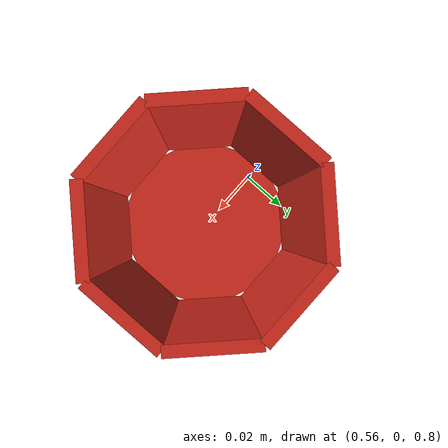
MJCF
<?xml version="1.0" encoding="utf-8"?>
<mujoco>
  <asset>
    <material name="cleanup_cup_material" rgba="0.85 0.17 0.12 1" />
  </asset>
  <worldbody>
    <!-- Hollow, unfilled cup; its freejoint allows tip and displacement measurements. -->
    <body name="cleanup_cup" pos="0.589 -0.001 0.800">
      <freejoint name="fj_cup" />
      <inertial pos="0 0 0.052" mass="0.120" diaginertia="0.00018 0.00018 0.00015" />
      <geom name="cleanup_cup_base" type="cylinder" pos="0 0 0.003" size="0.036 0.003" material="cleanup_cup_material" friction="0.9 0.01 0.001" contype="1" conaffinity="1023" />
      <geom name="cleanup_cup_wall_0" type="box" pos="0.036 0 0.056" size="0.002 0.015 0.050" material="cleanup_cup_material" contype="1" conaffinity="1023" />
      <geom name="cleanup_cup_wall_1" type="box" pos="0.025456 0.025456 0.056" quat="0.9238795 0 0 0.3826834" size="0.002 0.015 0.050" material="cleanup_cup_material" contype="1" conaffinity="1023" />
      <geom name="cleanup_cup_wall_2" type="box" pos="0 0.036 0.056" quat="0.7071068 0 0 0.7071068" size="0.002 0.015 0.050" material="cleanup_cup_material" contype="1" conaffinity="1023" />
      <geom name="cleanup_cup_wall_3" type="box" pos="-0.025456 0.025456 0.056" quat="0.3826834 0 0 0.9238795" size="0.002 0.015 0.050" material="cleanup_cup_material" contype="1" conaffinity="1023" />
      <geom name="cleanup_cup_wall_4" type="box" pos="-0.036 0 0.056" quat="0 0 0 1" size="0.002 0.015 0.050" material="cleanup_cup_material" contype="1" conaffinity="1023" />
      <geom name="cleanup_cup_wall_5" type="box" pos="-0.025456 -0.025456 0.056" quat="-0.3826834 0 0 0.9238795" size="0.002 0.015 0.050" material="cleanup_cup_material" contype="1" conaffinity="1023" />
      <geom name="cleanup_cup_wall_6" type="box" pos="0 -0.036 0.056" quat="-0.7071068 0 0 0.7071068" size="0.002 0.015 0.050" material="cleanup_cup_material" contype="1" conaffinity="1023" />
      <geom name="cleanup_cup_wall_7" type="box" pos="0.025456 -0.025456 0.056" quat="-0.9238795 0 0 0.3826834" size="0.002 0.015 0.050" material="cleanup_cup_material" contype="1" conaffinity="1023" />
    </body>
  </worldbody>
</mujoco>
